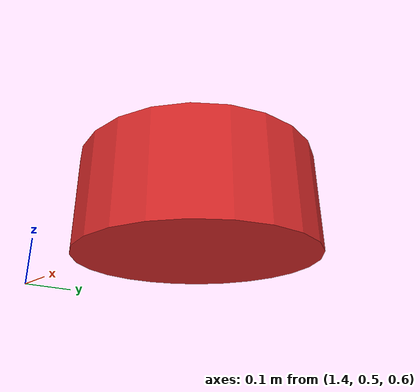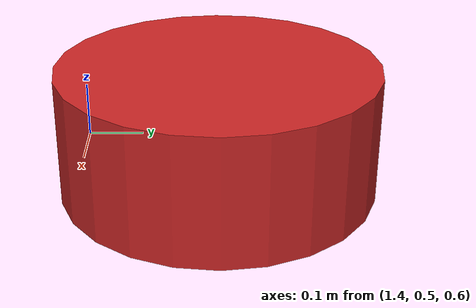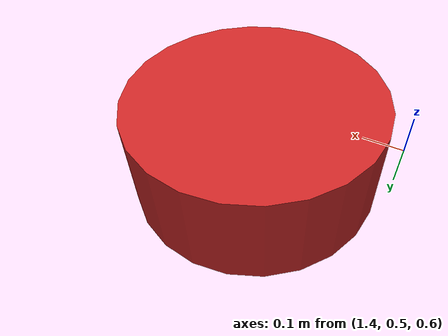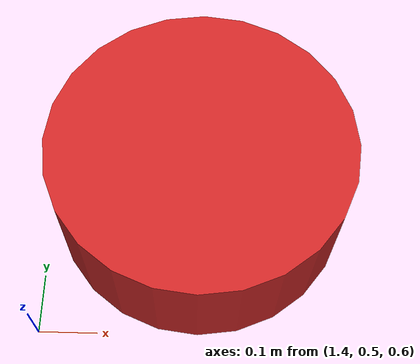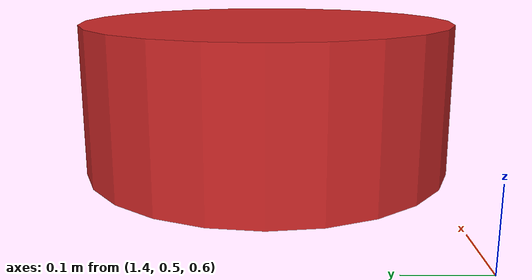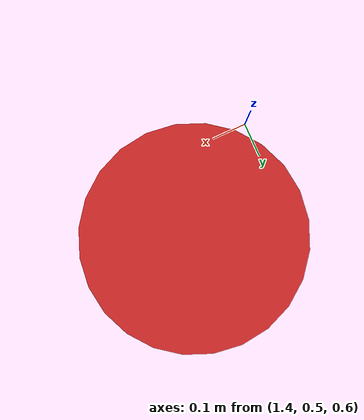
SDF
<sdf version='1.6'>

  <model name='cylinder5'>
    <pose frame=''>1.669570 0.739973 0.739973 0 -0 0</pose>
    <link name='link'>
      <inertial>
        <mass>0.5</mass>
        <inertia>
          <ixx>0.1</ixx>
          <ixy>0</ixy>
          <ixz>0</ixz>
          <iyy>0.1</iyy>
          <iyz>0</iyz>
          <izz>0.1</izz>
        </inertia>
        <pose frame=''>0 0 0 0 -0 0</pose>
      </inertial>
      <collision name='collision'>
        <geometry>
          <cylinder>
            <radius>0.25</radius>
            <length>0.2</length>
          </cylinder>
        </geometry>
        <max_contacts>10</max_contacts>
        <surface>
          <contact>
            <ode/>
          </contact>
          <bounce/>
          <friction>
            <torsional>
              <ode/>
            </torsional>
            <ode/>
          </friction>
        </surface>
      </collision>
      <visual name='visual'>
        <geometry>
          <cylinder>
            <radius>0.25</radius>
            <length>0.2</length>
          </cylinder>
        </geometry>
        <material>
          <script>
            <name>Gazebo/Red</name>
            <uri>file://media/materials/scripts/gazebo.material</uri>
          </script>
        </material>
      </visual>
      <self_collide>1</self_collide>
      <enable_wind>0</enable_wind>
      <kinematic>0</kinematic>
    </link>
  </model>

</sdf>
